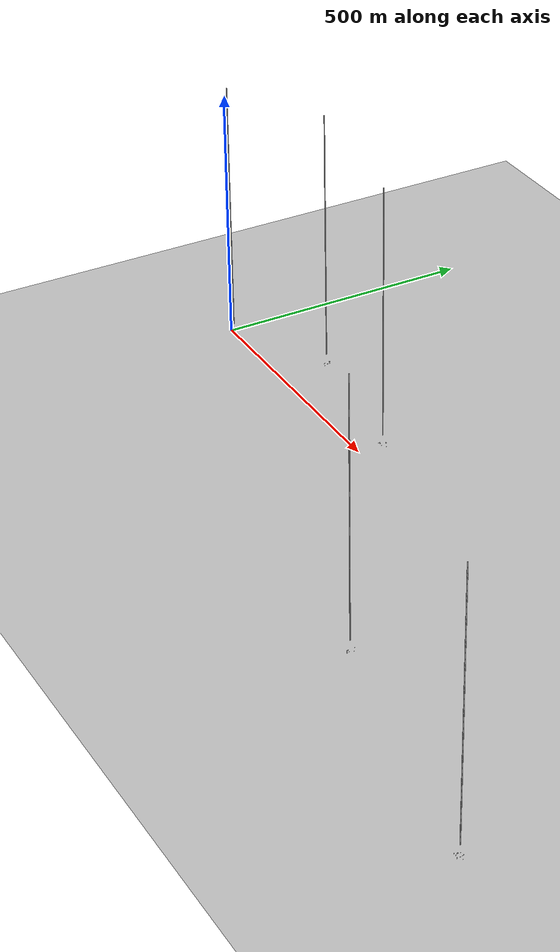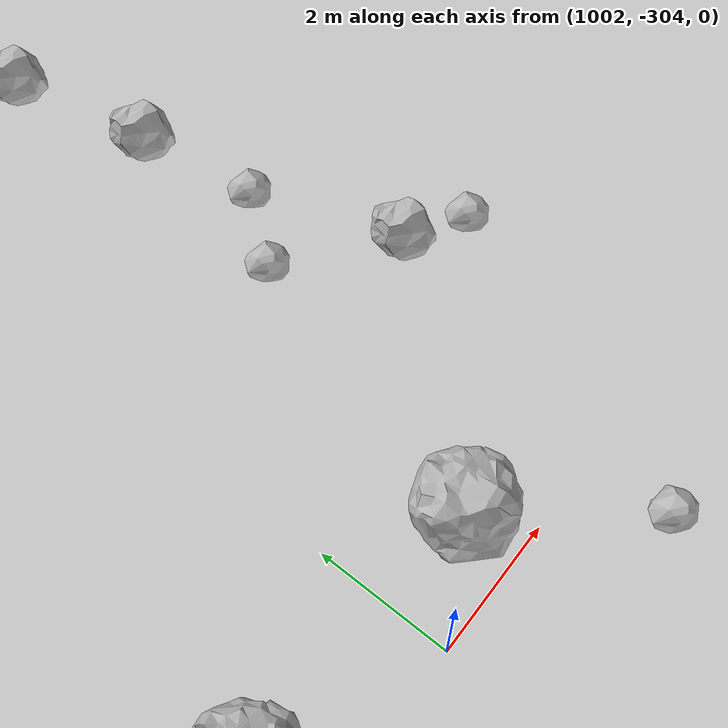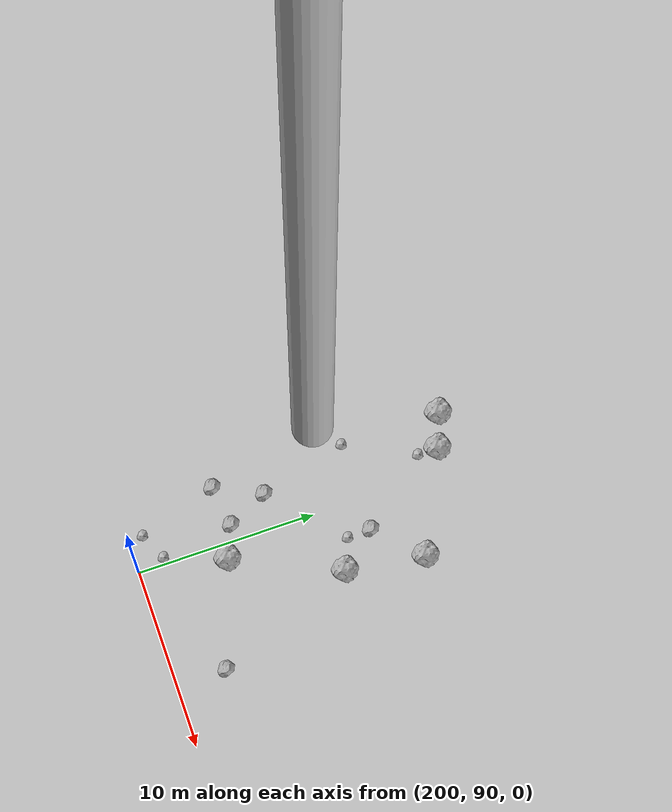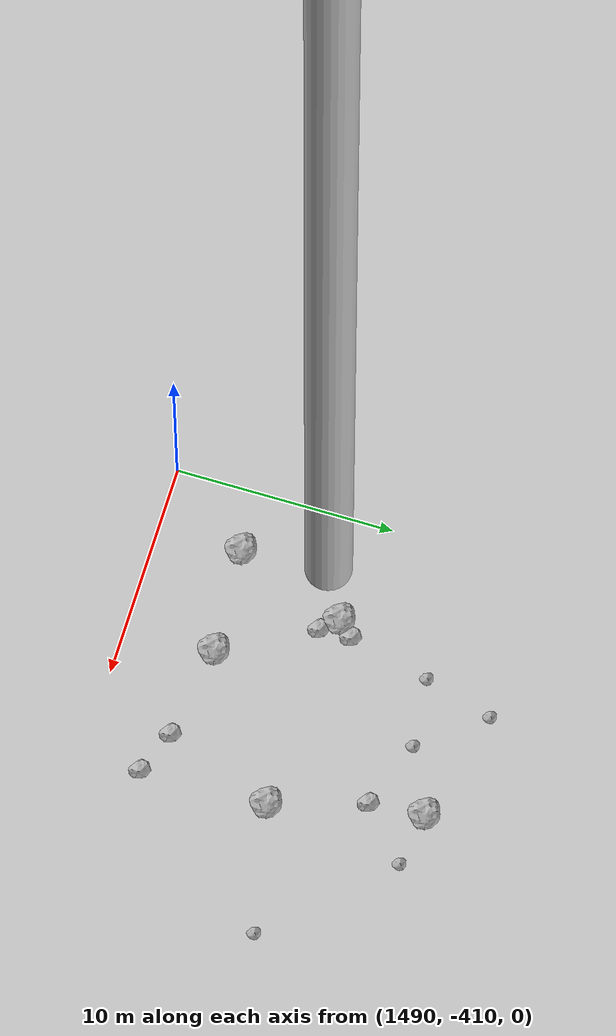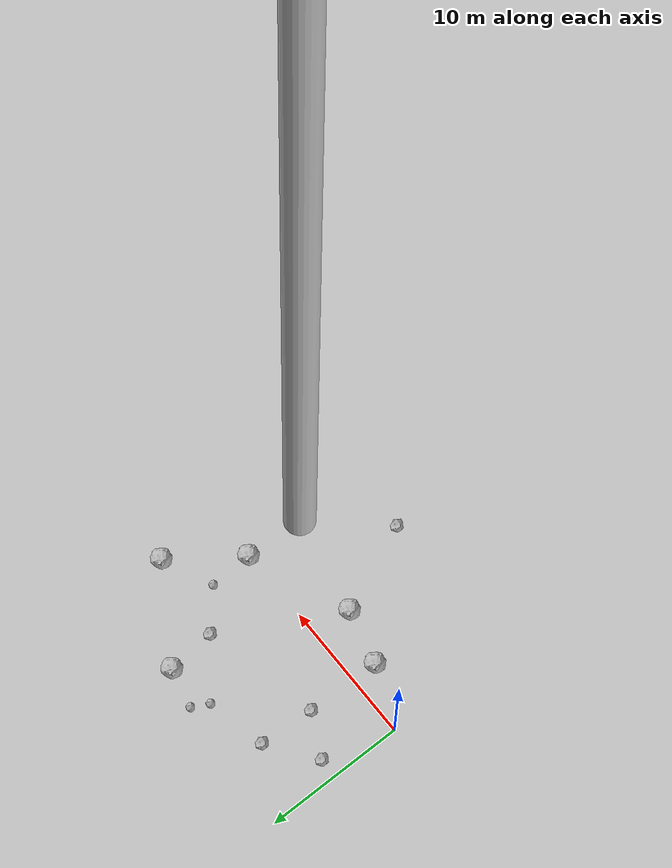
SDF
<?xml version="1.0" ?>
<sdf version="1.6">
  <world name="default">

    <include>
      <uri>model://custom_ground</uri>
    </include>

    <include>
      <uri>model://sun</uri>
    </include>

    <spherical_coordinates>
      <surface_model>EARTH_WGS84</surface_model>
      <latitude_deg>38.161479</latitude_deg>
      <longitude_deg>-122.454630</longitude_deg>
      <elevation>488.0</elevation>
      <heading_deg>90</heading_deg>
    </spherical_coordinates>

    <model name="rock1_0_0">
      <include>
        <uri>model://rock1</uri>
        <pose>8.168981102728344 -2.7369357557186147 0.5 0 0 0</pose>
      </include>
    </model>
    <model name="rock1_0_1">
      <include>
        <uri>model://rock1</uri>
        <pose>18.662570467284652 4.813180373628416 0.5 0 0 0</pose>
      </include>
    </model>
    <model name="rock1_0_2">
      <include>
        <uri>model://rock1</uri>
        <pose>4.298727998534087 -1.7625975834025596 0.5 0 0 0</pose>
      </include>
    </model>
    <model name="rock1_0_3">
      <include>
        <uri>model://rock1</uri>
        <pose>15.272938607007731 0.13779043146481307 0.5 0 0 0</pose>
      </include>
    </model>
    <model name="rock1_0_4">
      <include>
        <uri>model://rock1</uri>
        <pose>12.284182311380034 8.873338832318105 0.5 0 0 0</pose>
      </include>
    </model>
    <model name="rock2_0_0">
      <include>
        <uri>model://rock2</uri>
        <pose>4.663364846290503 7.358258694845603 0.3 0 0 0</pose>
      </include>
    </model>
    <model name="rock2_0_1">
      <include>
        <uri>model://rock2</uri>
        <pose>1.385576095188108 4.986142530094204 0.3 0 0 0</pose>
      </include>
    </model>
    <model name="rock2_0_2">
      <include>
        <uri>model://rock2</uri>
        <pose>4.415133441458945 3.4659593561876623 0.3 0 0 0</pose>
      </include>
    </model>
    <model name="rock2_0_3">
      <include>
        <uri>model://rock2</uri>
        <pose>10.767233775925062 -8.877391879005136 0.3 0 0 0</pose>
      </include>
    </model>
    <model name="rock2_0_4">
      <include>
        <uri>model://rock2</uri>
        <pose>12.596620083426666 5.440925015940168 0.3 0 0 0</pose>
      </include>
    </model>
    <model name="rock3_0_0">
      <include>
        <uri>model://rock3</uri>
        <pose>8.836353321795032 8.300781294571873 0.2 0 0 0</pose>
      </include>
    </model>
    <model name="rock3_0_1">
      <include>
        <uri>model://rock3</uri>
        <pose>15.118870780044686 3.165735801029088 0.2 0 0 0</pose>
      </include>
    </model>
    <model name="rock3_0_2">
      <include>
        <uri>model://rock3</uri>
        <pose>14.478166561744539 -3.662753271363705 0.2 0 0 0</pose>
      </include>
    </model>
    <model name="rock3_0_3">
      <include>
        <uri>model://rock3</uri>
        <pose>4.1829655294930435 -1.6281407879696843 0.2 0 0 0</pose>
      </include>
    </model>
    <model name="rock3_0_4">
      <include>
        <uri>model://rock3</uri>
        <pose>9.464091162481985 9.477699377061615 0.2 0 0 0</pose>
      </include>
    </model>
    <model name="rock1_1_0">
      <include>
        <uri>model://rock1</uri>
        <pose>196.84601221937643 108.32565296806689 0.5 0 0 0</pose>
      </include>
    </model>
    <model name="rock1_1_1">
      <include>
        <uri>model://rock1</uri>
        <pose>204.1669736236049 105.04908847577367 0.5 0 0 0</pose>
      </include>
    </model>
    <model name="rock1_1_2">
      <include>
        <uri>model://rock1</uri>
        <pose>203.54155324248222 100.63836955018418 0.5 0 0 0</pose>
      </include>
    </model>
    <model name="rock1_1_3">
      <include>
        <uri>model://rock1</uri>
        <pose>198.71113713259805 107.63853876118381 0.5 0 0 0</pose>
      </include>
    </model>
    <model name="rock1_1_4">
      <include>
        <uri>model://rock1</uri>
        <pose>200.88916748939178 94.80919298725874 0.5 0 0 0</pose>
      </include>
    </model>
    <model name="rock2_1_0">
      <include>
        <uri>model://rock2</uri>
        <pose>199.07864111330431 95.57906666490791 0.3 0 0 0</pose>
      </include>
    </model>
    <model name="rock2_1_1">
      <include>
        <uri>model://rock2</uri>
        <pose>201.76393318458136 102.70618694669403 0.3 0 0 0</pose>
      </include>
    </model>
    <model name="rock2_1_2">
      <include>
        <uri>model://rock2</uri>
        <pose>196.7830343533351 95.25500786396452 0.3 0 0 0</pose>
      </include>
    </model>
    <model name="rock2_1_3">
      <include>
        <uri>model://rock2</uri>
        <pose>206.56149714057852 92.83150207700034 0.3 0 0 0</pose>
      </include>
    </model>
    <model name="rock2_1_4">
      <include>
        <uri>model://rock2</uri>
        <pose>198.01892540822072 97.82885672446346 0.3 0 0 0</pose>
      </include>
    </model>
    <model name="rock3_1_0">
      <include>
        <uri>model://rock3</uri>
        <pose>199.62750088646243 91.50719071735567 0.2 0 0 0</pose>
      </include>
    </model>
    <model name="rock3_1_1">
      <include>
        <uri>model://rock3</uri>
        <pose>198.66086992363037 106.48939370927569 0.2 0 0 0</pose>
      </include>
    </model>
    <model name="rock3_1_2">
      <include>
        <uri>model://rock3</uri>
        <pose>198.1264661713837 90.80049479312912 0.2 0 0 0</pose>
      </include>
    </model>
    <model name="rock3_1_3">
      <include>
        <uri>model://rock3</uri>
        <pose>196.7688601938253 102.69644434844811 0.2 0 0 0</pose>
      </include>
    </model>
    <model name="rock3_1_4">
      <include>
        <uri>model://rock3</uri>
        <pose>201.81197289389866 101.35026975823365 0.2 0 0 0</pose>
      </include>
    </model>
    <model name="rock1_2_0">
      <include>
        <uri>model://rock1</uri>
        <pose>497.08623457473277 57.75712729231609 0.5 0 0 0</pose>
      </include>
    </model>
    <model name="rock1_2_1">
      <include>
        <uri>model://rock1</uri>
        <pose>499.0560172969521 56.625451763925355 0.5 0 0 0</pose>
      </include>
    </model>
    <model name="rock1_2_2">
      <include>
        <uri>model://rock1</uri>
        <pose>499.06980175340846 58.77040556395784 0.5 0 0 0</pose>
      </include>
    </model>
    <model name="rock1_2_3">
      <include>
        <uri>model://rock1</uri>
        <pose>495.1588306588037 48.44107477467818 0.5 0 0 0</pose>
      </include>
    </model>
    <model name="rock1_2_4">
      <include>
        <uri>model://rock1</uri>
        <pose>491.65460852901384 48.76241850019898 0.5 0 0 0</pose>
      </include>
    </model>
    <model name="rock2_2_0">
      <include>
        <uri>model://rock2</uri>
        <pose>492.8225262951971 48.182331554419605 0.3 0 0 0</pose>
      </include>
    </model>
    <model name="rock2_2_1">
      <include>
        <uri>model://rock2</uri>
        <pose>496.1020553860371 48.175633636266326 0.3 0 0 0</pose>
      </include>
    </model>
    <model name="rock2_2_2">
      <include>
        <uri>model://rock2</uri>
        <pose>502.4286284465775 46.31061140253484 0.3 0 0 0</pose>
      </include>
    </model>
    <model name="rock2_2_3">
      <include>
        <uri>model://rock2</uri>
        <pose>509.4035503201156 51.90147119842527 0.3 0 0 0</pose>
      </include>
    </model>
    <model name="rock2_2_4">
      <include>
        <uri>model://rock2</uri>
        <pose>495.99202071861623 41.83815252499639 0.3 0 0 0</pose>
      </include>
    </model>
    <model name="rock3_2_0">
      <include>
        <uri>model://rock3</uri>
        <pose>507.8578033560229 51.30832253699132 0.2 0 0 0</pose>
      </include>
    </model>
    <model name="rock3_2_1">
      <include>
        <uri>model://rock3</uri>
        <pose>491.7717768695962 45.946763453292036 0.2 0 0 0</pose>
      </include>
    </model>
    <model name="rock3_2_2">
      <include>
        <uri>model://rock3</uri>
        <pose>495.21468048235096 54.87390448339397 0.2 0 0 0</pose>
      </include>
    </model>
    <model name="rock3_2_3">
      <include>
        <uri>model://rock3</uri>
        <pose>507.21732445433804 48.876718516815245 0.2 0 0 0</pose>
      </include>
    </model>
    <model name="rock3_2_4">
      <include>
        <uri>model://rock3</uri>
        <pose>504.0720682983239 41.242638855604156 0.2 0 0 0</pose>
      </include>
    </model>
    <model name="rock1_3_0">
      <include>
        <uri>model://rock1</uri>
        <pose>1005.3117186839647 -308.3830081916783 0.5 0 0 0</pose>
      </include>
    </model>
    <model name="rock1_3_1">
      <include>
        <uri>model://rock1</uri>
        <pose>999.151284390502 -304.73847074011707 0.5 0 0 0</pose>
      </include>
    </model>
    <model name="rock1_3_2">
      <include>
        <uri>model://rock1</uri>
        <pose>1003.5745228647282 -303.13725745510607 0.5 0 0 0</pose>
      </include>
    </model>
    <model name="rock1_3_3">
      <include>
        <uri>model://rock1</uri>
        <pose>1002.2109171219116 -307.53060528233425 0.5 0 0 0</pose>
      </include>
    </model>
    <model name="rock1_3_4">
      <include>
        <uri>model://rock1</uri>
        <pose>999.5268528085434 -303.0090684102723 0.5 0 0 0</pose>
      </include>
    </model>
    <model name="rock2_3_0">
      <include>
        <uri>model://rock2</uri>
        <pose>1006.4580026474484 -299.85787295115915 0.3 0 0 0</pose>
      </include>
    </model>
    <model name="rock2_3_1">
      <include>
        <uri>model://rock2</uri>
        <pose>1005.4165629296493 -295.5419639532207 0.3 0 0 0</pose>
      </include>
    </model>
    <model name="rock2_3_2">
      <include>
        <uri>model://rock2</uri>
        <pose>1003.9480100415952 -291.4165640226224 0.3 0 0 0</pose>
      </include>
    </model>
    <model name="rock2_3_3">
      <include>
        <uri>model://rock2</uri>
        <pose>1004.9671013743186 -293.1423848228687 0.3 0 0 0</pose>
      </include>
    </model>
    <model name="rock2_3_4">
      <include>
        <uri>model://rock2</uri>
        <pose>998.1158102224599 -290.50205567012335 0.3 0 0 0</pose>
      </include>
    </model>
    <model name="rock3_3_0">
      <include>
        <uri>model://rock3</uri>
        <pose>1004.8276873851165 -298.6649338602475 0.2 0 0 0</pose>
      </include>
    </model>
    <model name="rock3_3_1">
      <include>
        <uri>model://rock3</uri>
        <pose>994.8699541637409 -308.01247330594947 0.2 0 0 0</pose>
      </include>
    </model>
    <model name="rock3_3_2">
      <include>
        <uri>model://rock3</uri>
        <pose>1007.3179575050759 -300.43582512845 0.2 0 0 0</pose>
      </include>
    </model>
    <model name="rock3_3_3">
      <include>
        <uri>model://rock3</uri>
        <pose>1005.6457756573474 -297.5924052295507 0.2 0 0 0</pose>
      </include>
    </model>
    <model name="rock3_3_4">
      <include>
        <uri>model://rock3</uri>
        <pose>1005.1805953539197 -305.2532016431521 0.2 0 0 0</pose>
      </include>
    </model>
    <model name="rock1_4_0">
      <include>
        <uri>model://rock1</uri>
        <pose>1494.8831894279847 -401.01964120906746 0.5 0 0 0</pose>
      </include>
    </model>
    <model name="rock1_4_1">
      <include>
        <uri>model://rock1</uri>
        <pose>1497.8496817708362 -405.90946388123797 0.5 0 0 0</pose>
      </include>
    </model>
    <model name="rock1_4_2">
      <include>
        <uri>model://rock1</uri>
        <pose>1504.0481930689416 -401.6140800084308 0.5 0 0 0</pose>
      </include>
    </model>
    <model name="rock1_4_3">
      <include>
        <uri>model://rock1</uri>
        <pose>1502.5430400442615 -394.8408772806881 0.5 0 0 0</pose>
      </include>
    </model>
    <model name="rock1_4_4">
      <include>
        <uri>model://rock1</uri>
        <pose>1492.9685871531472 -406.146403392331 0.5 0 0 0</pose>
      </include>
    </model>
    <model name="rock2_4_0">
      <include>
        <uri>model://rock2</uri>
        <pose>1504.070556915191 -407.3518618491744 0.3 0 0 0</pose>
      </include>
    </model>
    <model name="rock2_4_1">
      <include>
        <uri>model://rock2</uri>
        <pose>1495.4749476995066 -401.75548556778074 0.3 0 0 0</pose>
      </include>
    </model>
    <model name="rock2_4_2">
      <include>
        <uri>model://rock2</uri>
        <pose>1495.441171698144 -400.28575527100776 0.3 0 0 0</pose>
      </include>
    </model>
    <model name="rock2_4_3">
      <include>
        <uri>model://rock2</uri>
        <pose>1502.063227691425 -406.57090238715153 0.3 0 0 0</pose>
      </include>
    </model>
    <model name="rock2_4_4">
      <include>
        <uri>model://rock2</uri>
        <pose>1502.647267874646 -397.32184171065467 0.3 0 0 0</pose>
      </include>
    </model>
    <model name="rock3_4_0">
      <include>
        <uri>model://rock3</uri>
        <pose>1509.822612775039 -400.40349006349896 0.2 0 0 0</pose>
      </include>
    </model>
    <model name="rock3_4_1">
      <include>
        <uri>model://rock3</uri>
        <pose>1497.25025997669 -393.39238307922733 0.2 0 0 0</pose>
      </include>
    </model>
    <model name="rock3_4_2">
      <include>
        <uri>model://rock3</uri>
        <pose>1499.524885355201 -396.24784851562066 0.2 0 0 0</pose>
      </include>
    </model>
    <model name="rock3_4_3">
      <include>
        <uri>model://rock3</uri>
        <pose>1496.3348016642008 -396.5661292029219 0.2 0 0 0</pose>
      </include>
    </model>
    <model name="rock3_4_4">
      <include>
        <uri>model://rock3</uri>
        <pose>1504.941608496158 -395.2618206390555 0.2 0 0 0</pose>
      </include>
    </model>

    <model name="cylinder_1">
      <static>true</static>
      <link name="link">
        <visual name="visual">
          <geometry>
            <cylinder>
              <radius>1</radius>
              <length>500</length>
            </cylinder>
          </geometry>
        </visual>
      </link>
      <pose>10 0 270 0 0 0</pose>
    </model>

    <model name="cylinder_2">
      <static>true</static>
      <link name="link">
        <visual name="visual">
          <geometry>
            <cylinder>
              <radius>1</radius>
              <length>500</length>
            </cylinder>
          </geometry>
        </visual>
      </link>
      <pose>200 100 270 0 0 0</pose>
    </model>

    <model name="cylinder_3">
      <static>true</static>
      <link name="link">
        <visual name="visual">
          <geometry>
            <cylinder>
              <radius>1</radius>
              <length>500</length>
            </cylinder>
          </geometry>
        </visual>
      </link>
      <pose>500 50 270 0 0 0</pose>
    </model>

    <model name="cylinder_4">
      <static>true</static>
      <link name="link">
        <visual name="visual">
          <geometry>
            <cylinder>
              <radius>1</radius>
              <length>500</length>
            </cylinder>
          </geometry>
        </visual>
      </link>
      <pose>1000 -300 270 0 0 0</pose>
    </model>

    <model name="cylinder_5">
      <static>true</static>
      <link name="link">
        <visual name="visual">
          <geometry>
            <cylinder>
              <radius>1</radius>
              <length>500</length>
            </cylinder>
          </geometry>
        </visual>
      </link>
      <pose>1500 -400 270 0 0 0</pose>
    </model>

  </world>
</sdf>

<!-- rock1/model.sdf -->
<sdf version="1.6">
  <model name="rock1">
    <static>true</static> <!-- Set to true if the model should not move -->
    <pose>0 0 0 0 0 0</pose>

    <!--z offset is 0.5 for full scale-->

    <link name="link">
      <collision name="rock1_collision">
        <geometry>
          <mesh>
            <uri>model://meshes/rock1.dae</uri>
          </mesh>
        </geometry>
      </collision>
      <visual name="rock1_visual">
        <geometry>
          <mesh>
            <uri>model://meshes/rock1.dae</uri>
          </mesh>
        </geometry>
        <material>
          <script>
            <uri>model://materials/scripts/sand_pebbles.material</uri>
            <name>custom_ground/Image</name>
          </script>
        </material>
      </visual>
    </link>
  </model>
</sdf>

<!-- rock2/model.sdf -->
<sdf version="1.6">
  <model name="rock2">
    <static>true</static> <!-- Set to true if the model should not move -->
    <pose>0 0 0 0 0 0</pose>

    <!--z offset is 0.3 for full scale-->

    <link name="link">
      <collision name="rock2_collision">
        <geometry>
          <mesh>
            <uri>model://meshes/rock2.dae</uri>
          </mesh>
        </geometry>
      </collision>
      <visual name="rock2_visual">
        <geometry>
          <mesh>
            <uri>model://meshes/rock2.dae</uri>
          </mesh>
        </geometry>
        <material>
          <script>
            <uri>model://materials/scripts/sand_pebbles.material</uri>
            <name>custom_ground/Image</name>
          </script>
        </material>
      </visual>
    </link>
  </model>
</sdf>

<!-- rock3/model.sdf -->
<sdf version="1.6">
  <model name="rock3">
    <static>true</static> <!-- Set to true if the model should not move -->
    <pose>0 0 0 0 0 0</pose>

    <!--z offset is 0.2 for full scale-->

    <link name="link">
      <collision name="rock3_collision">
        <geometry>
          <mesh>
            <uri>model://meshes/rock3.dae</uri>
          </mesh>
        </geometry>
      </collision>
      <visual name="rock3_visual">
        <geometry>
          <mesh>
            <uri>model://meshes/rock3.dae</uri>
          </mesh>
        </geometry>
        <material>
          <script>
            <uri>model://materials/scripts/sand_pebbles.material</uri>
            <name>custom_ground/Image</name>
          </script>
        </material>
      </visual>
    </link>
  </model>
</sdf>

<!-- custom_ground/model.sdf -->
<sdf version="1.6">
  <model name="custom_ground">
    <static>true</static> <!-- Ground is static and immovable -->
    <link name="ground_link">
      <pose>240 0 0 0 0 0</pose> <!-- Position and orientation relative to the world -->
      <!-- Visual Representation -->
      <visual name="ground_visual">
        <geometry>
          <plane>
            <normal>0 0 1</normal> <!-- Upward facing plane -->
            <size>500 500</size> <!-- Size of the plane -->
          </plane>
        </geometry>
        <material>
          <script>
            <uri>model://materials/scripts/sand_pebbles.material</uri>
            <name>custom_ground/Image</name>
          </script>
        </material>
      </visual>

      <!-- Collision Representation -->
      <collision name="ground_collision">
        <geometry>
          <plane>
            <normal>0 0 1</normal>
            <size>100 100</size>
          </plane>
        </geometry>
      </collision>

    </link>
  </model>
</sdf>
